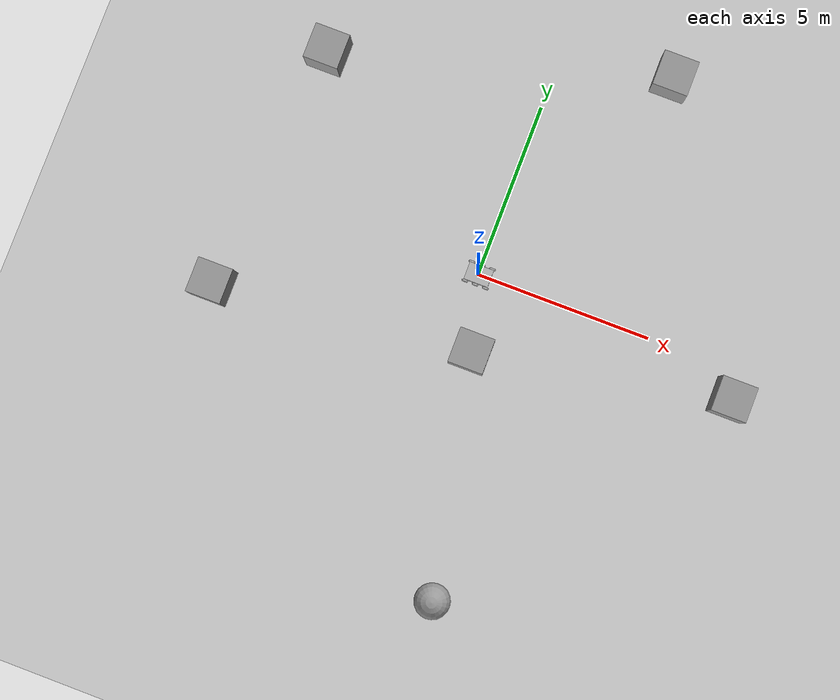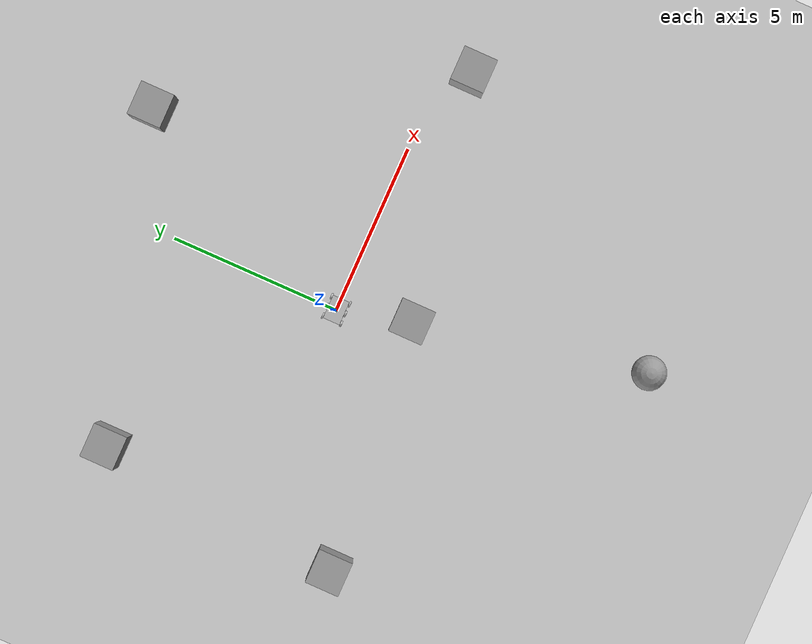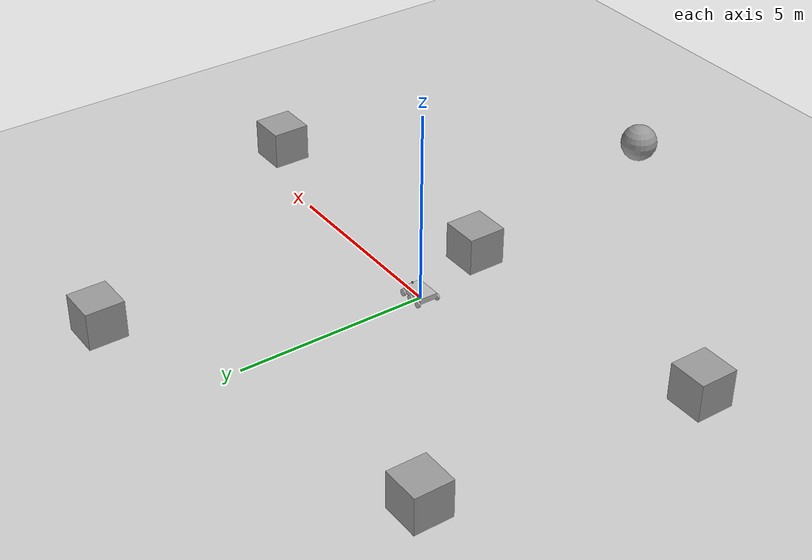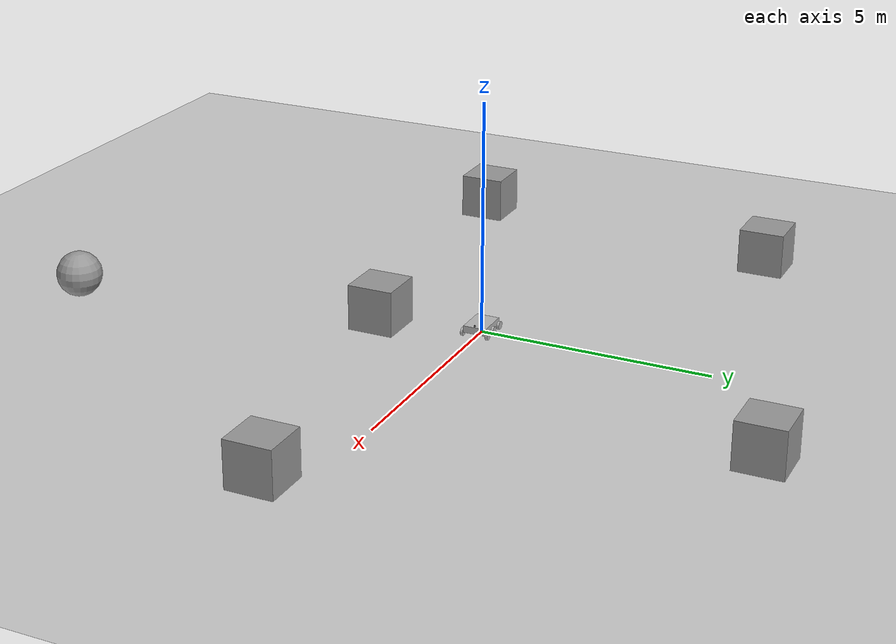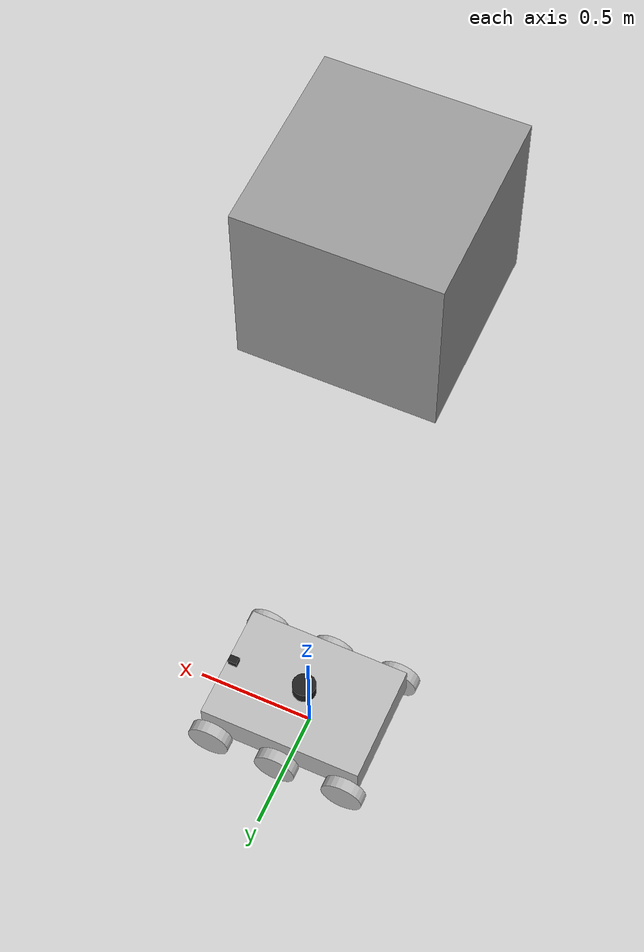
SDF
<sdf version="1.7">
 <world name="default">
  <light name="sun" type="directional">
   <pose>0 0 10 0 -0 0</pose>
   <diffuse>0.8 0.8 0.8 1</diffuse>
   <specular>0.2 0.2 0.2 1</specular>
   <attenuation>
    <range>1000</range>
    <constant>0.9</constant>
    <linear>0.01</linear>
    <quadratic>0.001</quadratic>
   </attenuation>
   <direction>-0.5 0.1 -0.9</direction>
   <spot><inner_angle>0</inner_angle><outer_angle>0</outer_angle><falloff>0</falloff></spot>
  </light>
  <model name="ground_plane">
   <static>1</static>
   <link name="link">
    <collision name="collision">
     <geometry><plane><normal>0 0 1</normal><size>100 100</size></plane></geometry>
     <surface>
      <contact><collide_bitmask>65535</collide_bitmask></contact>
      <friction><ode><mu>100</mu><mu2>50</mu2></ode></friction>
     </surface>
    </collision>
    <visual name="visual">
     <cast_shadows>0</cast_shadows>
     <geometry><plane><normal>0 0 1</normal><size>100 100</size></plane></geometry>
     <material>
      <script><uri>file://media/materials/scripts/gazebo.material</uri><name>Gazebo/Grey</name></script>
     </material>
    </visual>
   </link>
  </model>
  <gravity>0 0 -9.8</gravity>
  <magnetic_field>6e-06 2.3e-05 -4.2e-05</magnetic_field>
  <atmosphere type="adiabatic"/>
  <physics type="ode">
   <max_step_size>0.001</max_step_size>
   <real_time_factor>1</real_time_factor>
   <real_time_update_rate>1000</real_time_update_rate>
  </physics>
  <scene><ambient>0.4 0.4 0.4 1</ambient><background>0.7 0.7 0.7 1</background><shadows>1</shadows></scene>
  <audio><device>default</device></audio>
  <spherical_coordinates>
   <surface_model>EARTH_WGS84</surface_model>
   <latitude_deg>0</latitude_deg>
   <longitude_deg>0</longitude_deg>
   <elevation>0</elevation>
   <heading_deg>0</heading_deg>
  </spherical_coordinates>
  <model name="my_bot">
   <link name="base_link">
    <inertial>
     <pose>0 0 0.00549 0 -0 0</pose>
     <mass>25.5</mass>
     <inertia><ixx>1.23889</ixx><ixy>0</ixy><ixz>0</ixz><iyy>1.53889</iyy><iyz>0</iyz><izz>2.00062</izz></inertia>
    </inertial>
    <collision name="base_link_fixed_joint_lump__chassis_collision">
     <pose>0 0 0.165 0 -0 0</pose>
     <geometry><box><size>0.7 0.5 0.15</size></box></geometry>
    </collision>
    <collision name="base_link_fixed_joint_lump__camera_frame_collision_1">
     <pose>0.32 0 0.26 0 -0 0</pose>
     <geometry><box><size>0.04 0.03 0.03</size></box></geometry>
    </collision>
    <collision name="base_link_fixed_joint_lump__laser_frame_collision_2">
     <pose>0 0 0.28 0 -0 0</pose>
     <geometry><cylinder><length>0.06</length><radius>0.05</radius></cylinder></geometry>
    </collision>
    <visual name="base_link_fixed_joint_lump__chassis_visual">
     <pose>0 0 0.165 0 -0 0</pose>
     <geometry><box><size>0.7 0.5 0.15</size></box></geometry>
    </visual>
    <visual name="base_link_fixed_joint_lump__camera_frame_visual_1">
     <pose>0.32 0 0.26 0 -0 0</pose>
     <geometry><box><size>0.04 0.03 0.03</size></box></geometry>
     <material>
      <script><name>Gazebo/Black</name><uri>file://media/materials/scripts/gazebo.material</uri></script>
     </material>
    </visual>
    <visual name="base_link_fixed_joint_lump__laser_frame_visual_2">
     <pose>0 0 0.28 0 -0 0</pose>
     <geometry><cylinder><length>0.06</length><radius>0.05</radius></cylinder></geometry>
     <material>
      <script><name>Gazebo/Black</name><uri>file://media/materials/scripts/gazebo.material</uri></script>
     </material>
    </visual>
    <sensor name="depth_camera" type="camera">
     <visualize>1</visualize>
     <update_rate>30</update_rate>
     <camera>
      <horizontal_fov>1.089</horizontal_fov>
      <image><width>640</width><height>480</height><format>R8G8B8</format></image>
      <clip><near>0.1</near><far>100</far></clip>
     </camera>
     <plugin name="camera_controller" filename="libgazebo_ros_camera.so">
      <frame_name>camera_optical_frame</frame_name>
      <ros><namespace>/camera</namespace></ros>
     </plugin>
     <pose>0.32 0 0.26 0 -0 0</pose>
    </sensor>
    <sensor name="laser" type="ray">
     <visualize>1</visualize>
     <update_rate>30</update_rate>
     <ray>
      <scan>
       <horizontal>
        <samples>360</samples>
        <min_angle>-3.1416</min_angle>
        <max_angle>3.1416</max_angle>
        <resolution>1</resolution>
       </horizontal>
       <vertical><samples>1</samples><min_angle>0</min_angle><max_angle>0</max_angle></vertical>
      </scan>
      <range><min>0.1</min><max>12</max></range>
     </ray>
     <plugin name="laser_controller" filename="libgazebo_ros_ray_sensor.so">
      <ros><argument>~/out:=scan</argument></ros>
      <output_type>sensor_msgs/LaserScan</output_type>
      <frame_name>laser_frame</frame_name>
     </plugin>
     <pose>0 0 0.28 0 -0 0</pose>
    </sensor>
   </link>
   <joint name="left_front_wheel_joint" type="revolute">
    <pose relative_to="base_link">0.3 0.28 0.09 0 -0 0</pose>
    <parent>base_link</parent>
    <child>left_front_wheel</child>
    <axis>
     <xyz>0 1 0</xyz>
     <limit><effort>50</effort><velocity>20</velocity><lower>-1e+16</lower><upper>1e+16</upper></limit>
     <dynamics><spring_reference>0</spring_reference><spring_stiffness>0</spring_stiffness></dynamics>
    </axis>
   </joint>
   <link name="left_front_wheel">
    <pose relative_to="left_front_wheel_joint">0 0 0 0 -0 0</pose>
    <inertial>
     <mass>2</mass>
     <inertia><ixx>0.02</ixx><ixy>0</ixy><ixz>0</ixz><iyy>0.02</iyy><iyz>0</iyz><izz>0.02</izz></inertia>
    </inertial>
    <collision name="left_front_wheel_collision">
     <pose>0 0 0 1.5708 -0 0</pose>
     <geometry><cylinder><length>0.05</length><radius>0.09</radius></cylinder></geometry>
     <surface><friction><ode><mu>0</mu><mu2>0</mu2></ode></friction></surface>
    </collision>
    <visual name="left_front_wheel_visual">
     <pose>0 0 0 1.5708 -0 0</pose>
     <geometry><cylinder><length>0.05</length><radius>0.09</radius></cylinder></geometry>
    </visual>
   </link>
   <joint name="left_mid_wheel_joint" type="revolute">
    <pose relative_to="base_link">0 0.28 0.09 0 -0 0</pose>
    <parent>base_link</parent>
    <child>left_mid_wheel</child>
    <axis>
     <xyz>0 1 0</xyz>
     <limit><effort>50</effort><velocity>20</velocity><lower>-1e+16</lower><upper>1e+16</upper></limit>
     <dynamics><spring_reference>0</spring_reference><spring_stiffness>0</spring_stiffness></dynamics>
    </axis>
   </joint>
   <link name="left_mid_wheel">
    <pose relative_to="left_mid_wheel_joint">0 0 0 0 -0 0</pose>
    <inertial>
     <mass>2</mass>
     <inertia><ixx>0.02</ixx><ixy>0</ixy><ixz>0</ixz><iyy>0.02</iyy><iyz>0</iyz><izz>0.02</izz></inertia>
    </inertial>
    <collision name="left_mid_wheel_collision">
     <pose>0 0 0 1.5708 -0 0</pose>
     <geometry><cylinder><length>0.05</length><radius>0.09</radius></cylinder></geometry>
     <surface><friction><ode><mu>1.5</mu><mu2>1.5</mu2></ode></friction></surface>
    </collision>
    <visual name="left_mid_wheel_visual">
     <pose>0 0 0 1.5708 -0 0</pose>
     <geometry><cylinder><length>0.05</length><radius>0.09</radius></cylinder></geometry>
    </visual>
   </link>
   <joint name="left_rear_wheel_joint" type="revolute">
    <pose relative_to="base_link">-0.3 0.28 0.09 0 -0 0</pose>
    <parent>base_link</parent>
    <child>left_rear_wheel</child>
    <axis>
     <xyz>0 1 0</xyz>
     <limit><effort>50</effort><velocity>20</velocity><lower>-1e+16</lower><upper>1e+16</upper></limit>
     <dynamics><spring_reference>0</spring_reference><spring_stiffness>0</spring_stiffness></dynamics>
    </axis>
   </joint>
   <link name="left_rear_wheel">
    <pose relative_to="left_rear_wheel_joint">0 0 0 0 -0 0</pose>
    <inertial>
     <mass>2</mass>
     <inertia><ixx>0.02</ixx><ixy>0</ixy><ixz>0</ixz><iyy>0.02</iyy><iyz>0</iyz><izz>0.02</izz></inertia>
    </inertial>
    <collision name="left_rear_wheel_collision">
     <pose>0 0 0 1.5708 -0 0</pose>
     <geometry><cylinder><length>0.05</length><radius>0.09</radius></cylinder></geometry>
     <surface><friction><ode><mu>0</mu><mu2>0</mu2></ode></friction></surface>
    </collision>
    <visual name="left_rear_wheel_visual">
     <pose>0 0 0 1.5708 -0 0</pose>
     <geometry><cylinder><length>0.05</length><radius>0.09</radius></cylinder></geometry>
    </visual>
   </link>
   <joint name="right_front_wheel_joint" type="revolute">
    <pose relative_to="base_link">0.3 -0.28 0.09 0 -0 0</pose>
    <parent>base_link</parent>
    <child>right_front_wheel</child>
    <axis>
     <xyz>0 1 0</xyz>
     <limit><effort>50</effort><velocity>20</velocity><lower>-1e+16</lower><upper>1e+16</upper></limit>
     <dynamics><spring_reference>0</spring_reference><spring_stiffness>0</spring_stiffness></dynamics>
    </axis>
   </joint>
   <link name="right_front_wheel">
    <pose relative_to="right_front_wheel_joint">0 0 0 0 -0 0</pose>
    <inertial>
     <mass>2</mass>
     <inertia><ixx>0.02</ixx><ixy>0</ixy><ixz>0</ixz><iyy>0.02</iyy><iyz>0</iyz><izz>0.02</izz></inertia>
    </inertial>
    <collision name="right_front_wheel_collision">
     <pose>0 0 0 1.5708 -0 0</pose>
     <geometry><cylinder><length>0.05</length><radius>0.09</radius></cylinder></geometry>
     <surface><friction><ode><mu>0</mu><mu2>0</mu2></ode></friction></surface>
    </collision>
    <visual name="right_front_wheel_visual">
     <pose>0 0 0 1.5708 -0 0</pose>
     <geometry><cylinder><length>0.05</length><radius>0.09</radius></cylinder></geometry>
    </visual>
   </link>
   <joint name="right_mid_wheel_joint" type="revolute">
    <pose relative_to="base_link">0 -0.28 0.09 0 -0 0</pose>
    <parent>base_link</parent>
    <child>right_mid_wheel</child>
    <axis>
     <xyz>0 1 0</xyz>
     <limit><effort>50</effort><velocity>20</velocity><lower>-1e+16</lower><upper>1e+16</upper></limit>
     <dynamics><spring_reference>0</spring_reference><spring_stiffness>0</spring_stiffness></dynamics>
    </axis>
   </joint>
   <link name="right_mid_wheel">
    <pose relative_to="right_mid_wheel_joint">0 0 0 0 -0 0</pose>
    <inertial>
     <mass>2</mass>
     <inertia><ixx>0.02</ixx><ixy>0</ixy><ixz>0</ixz><iyy>0.02</iyy><iyz>0</iyz><izz>0.02</izz></inertia>
    </inertial>
    <collision name="right_mid_wheel_collision">
     <pose>0 0 0 1.5708 -0 0</pose>
     <geometry><cylinder><length>0.05</length><radius>0.09</radius></cylinder></geometry>
     <surface><friction><ode><mu>1.5</mu><mu2>1.5</mu2></ode></friction></surface>
    </collision>
    <visual name="right_mid_wheel_visual">
     <pose>0 0 0 1.5708 -0 0</pose>
     <geometry><cylinder><length>0.05</length><radius>0.09</radius></cylinder></geometry>
    </visual>
   </link>
   <joint name="right_rear_wheel_joint" type="revolute">
    <pose relative_to="base_link">-0.3 -0.28 0.09 0 -0 0</pose>
    <parent>base_link</parent>
    <child>right_rear_wheel</child>
    <axis>
     <xyz>0 1 0</xyz>
     <limit><effort>50</effort><velocity>20</velocity><lower>-1e+16</lower><upper>1e+16</upper></limit>
     <dynamics><spring_reference>0</spring_reference><spring_stiffness>0</spring_stiffness></dynamics>
    </axis>
   </joint>
   <link name="right_rear_wheel">
    <pose relative_to="right_rear_wheel_joint">0 0 0 0 -0 0</pose>
    <inertial>
     <mass>2</mass>
     <inertia><ixx>0.02</ixx><ixy>0</ixy><ixz>0</ixz><iyy>0.02</iyy><iyz>0</iyz><izz>0.02</izz></inertia>
    </inertial>
    <collision name="right_rear_wheel_collision">
     <pose>0 0 0 1.5708 -0 0</pose>
     <geometry><cylinder><length>0.05</length><radius>0.09</radius></cylinder></geometry>
     <surface><friction><ode><mu>0</mu><mu2>0</mu2></ode></friction></surface>
    </collision>
    <visual name="right_rear_wheel_visual">
     <pose>0 0 0 1.5708 -0 0</pose>
     <geometry><cylinder><length>0.05</length><radius>0.09</radius></cylinder></geometry>
    </visual>
   </link>
   <static>0</static>
   <plugin name="diff_drive" filename="libgazebo_ros_diff_drive.so">
    <left_joint>left_mid_wheel_joint</left_joint>
    <right_joint>right_mid_wheel_joint</right_joint>
    <wheel_separation>0.56</wheel_separation>
    <wheel_diameter>0.18</wheel_diameter>
    <publish_odom>1</publish_odom>
    <publish_odom_tf>1</publish_odom_tf>
    <odometry_frame>odom</odometry_frame>
    <robot_base_frame>base_link</robot_base_frame>
   </plugin>
   <pose>0.021205 -0.002726 -3e-06 0 -9e-06 -0.000544</pose>
  </model>
  <model name="unit_box">
   <pose>-6.05924 4.31981 0.5 0 -0 0</pose>
   <link name="link">
    <inertial>
     <mass>1</mass>
     <inertia>
      <ixx>0.166667</ixx>
      <ixy>0</ixy>
      <ixz>0</ixz>
      <iyy>0.166667</iyy>
      <iyz>0</iyz>
      <izz>0.166667</izz>
     </inertia>
    </inertial>
    <collision name="collision"><geometry><box><size>1 1 1</size></box></geometry></collision>
    <visual name="visual">
     <geometry><box><size>1 1 1</size></box></geometry>
     <material>
      <script><name>Gazebo/Grey</name><uri>file://media/materials/scripts/gazebo.material</uri></script>
     </material>
    </visual>
   </link>
  </model>
  <model name="unit_box_0">
   <pose>0.58866 -2.07106 0.5 0 -0 0</pose>
   <link name="link">
    <inertial>
     <mass>1</mass>
     <inertia>
      <ixx>0.166667</ixx>
      <ixy>0</ixy>
      <ixz>0</ixz>
      <iyy>0.166667</iyy>
      <iyz>0</iyz>
      <izz>0.166667</izz>
     </inertia>
    </inertial>
    <collision name="collision"><geometry><box><size>1 1 1</size></box></geometry></collision>
    <visual name="visual">
     <geometry><box><size>1 1 1</size></box></geometry>
     <material>
      <script><name>Gazebo/Grey</name><uri>file://media/materials/scripts/gazebo.material</uri></script>
     </material>
    </visual>
   </link>
  </model>
  <model name="unit_box_1">
   <pose>-6.7042 -2.79974 0.5 0 -0 0</pose>
   <link name="link">
    <inertial>
     <mass>1</mass>
     <inertia>
      <ixx>0.166667</ixx>
      <ixy>0</ixy>
      <ixz>0</ixz>
      <iyy>0.166667</iyy>
      <iyz>0</iyz>
      <izz>0.166667</izz>
     </inertia>
    </inertial>
    <collision name="collision"><geometry><box><size>1 1 1</size></box></geometry></collision>
    <visual name="visual">
     <geometry><box><size>1 1 1</size></box></geometry>
     <material>
      <script><name>Gazebo/Grey</name><uri>file://media/materials/scripts/gazebo.material</uri></script>
     </material>
    </visual>
   </link>
  </model>
  <model name="unit_box_2">
   <pose>3.12372 6.98988 0.5 0 -0 0</pose>
   <link name="link">
    <inertial>
     <mass>1</mass>
     <inertia>
      <ixx>0.166667</ixx>
      <ixy>0</ixy>
      <ixz>0</ixz>
      <iyy>0.166667</iyy>
      <iyz>0</iyz>
      <izz>0.166667</izz>
     </inertia>
    </inertial>
    <collision name="collision"><geometry><box><size>1 1 1</size></box></geometry></collision>
    <visual name="visual">
     <geometry><box><size>1 1 1</size></box></geometry>
     <material>
      <script><name>Gazebo/Grey</name><uri>file://media/materials/scripts/gazebo.material</uri></script>
     </material>
    </visual>
   </link>
  </model>
  <model name="unit_box_3">
   <pose>7.65343 -0.790711 0.5 0 -0 0</pose>
   <link name="link">
    <inertial>
     <mass>1</mass>
     <inertia>
      <ixx>0.166667</ixx>
      <ixy>0</ixy>
      <ixz>0</ixz>
      <iyy>0.166667</iyy>
      <iyz>0</iyz>
      <izz>0.166667</izz>
     </inertia>
    </inertial>
    <collision name="collision"><geometry><box><size>1 1 1</size></box></geometry></collision>
    <visual name="visual">
     <geometry><box><size>1 1 1</size></box></geometry>
     <material>
      <script><name>Gazebo/Grey</name><uri>file://media/materials/scripts/gazebo.material</uri></script>
     </material>
    </visual>
   </link>
  </model>
  <model name="unit_sphere">
   <pose>1.97842 -8.72561 0.5 0 -0 0</pose>
   <link name="link">
    <inertial>
     <mass>1</mass>
     <inertia><ixx>0.1</ixx><ixy>0</ixy><ixz>0</ixz><iyy>0.1</iyy><iyz>0</iyz><izz>0.1</izz></inertia>
    </inertial>
    <collision name="collision"><geometry><sphere><radius>0.5</radius></sphere></geometry></collision>
    <visual name="visual">
     <geometry><sphere><radius>0.5</radius></sphere></geometry>
     <material>
      <script><name>Gazebo/Grey</name><uri>file://media/materials/scripts/gazebo.material</uri></script>
     </material>
    </visual>
   </link>
  </model>
 </world>
</sdf>
